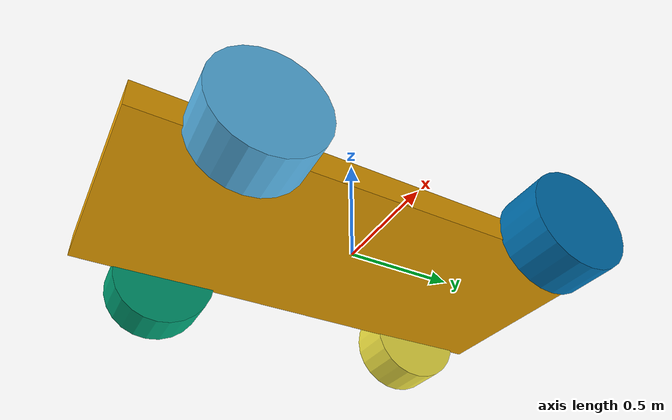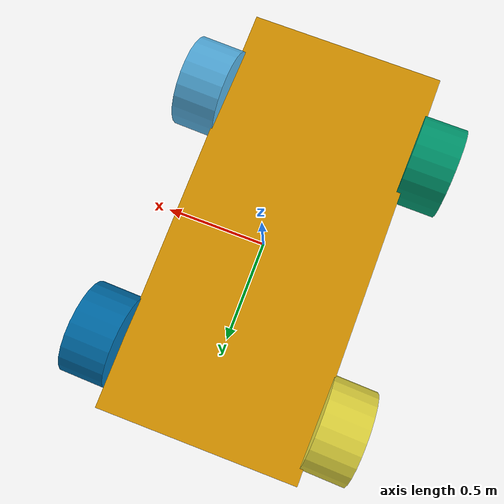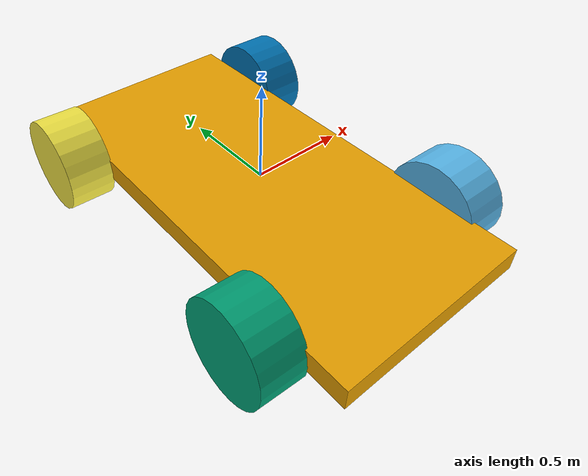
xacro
<?xml version="1.0" ?>
<robot name="bfl_1" xmlns:xacro="http://ros.org/wiki/xacro">

  <xacro:include filename="$(find dharmendra_model)/gazebo/bfl_1_material.gazebo" />
  <xacro:include filename="$(find dharmendra_model)/gazebo/bfl_1_physics.gazebo" />
  <xacro:include filename="$(find dharmendra_model)/gazebo/bfl_1_plugins.gazebo" />

  <joint name="bfl_1__link_0_JOINT_0" type="revolute">
    <parent link="bfl_1__link_0"/>
    <child link="bfl_1__link_1"/>
    <origin xyz="5.4971e-01 -6.7342e-01  4.4000e-04" rpy="-1.57019 -0.00661  1.54546"/>
    <axis xyz="0 0 1"/>
    <limit lower="-1.79769e+308" upper="1.79769e+308" effort="-1.0" velocity="-1.0"/>
  </joint>
  <joint name="bfl_1__link_0_JOINT_1" type="revolute">
    <parent link="bfl_1__link_0"/>
    <child link="bfl_1__link_1_clone"/>
    <origin xyz="-0.6462  -0.6747  -0.01576" rpy="1.62046 -0.00611  1.53547"/>
    <axis xyz="0 0 1"/>
    <limit lower="-1.79769e+308" upper="1.79769e+308" effort="-1.0" velocity="-1.0"/>
  </joint>
  <joint name="bfl_1__link_0_JOINT_2" type="revolute">
    <parent link="bfl_1__link_0"/>
    <child link="bfl_1__link_1_clone_0"/>
    <origin xyz="-6.4719e-01  7.0877e-01  4.4000e-04" rpy="1.5803  -0.00661  1.54546"/>
    <axis xyz="0 0 1"/>
    <limit lower="-1.79769e+308" upper="1.79769e+308" effort="-1.0" velocity="-1.0"/>
  </joint>
  <joint name="bfl_1__link_0_JOINT_3" type="revolute">
    <parent link="bfl_1__link_0"/>
    <child link="bfl_1__link_1_clone_1"/>
    <origin xyz="5.6365e-01 6.8420e-01 4.4000e-04" rpy="-1.57019 -0.00661  1.54546"/>
    <axis xyz="0 0 1"/>
    <limit lower="-1.79769e+308" upper="1.79769e+308" effort="-1.0" velocity="-1.0"/>
  </joint>
  <link name="bfl_1__link_0">
    <inertial>
      <mass value="0.234905"/>
      <origin xyz="0 0 0" rpy="0 0 0"/>
      <inertia ixx="0.086962" ixy="0" ixz="0" iyy="0.0198193" iyz="0" izz="0.106294"/>
    </inertial>
    <collision name="bfl_1__collision">
      <origin xyz="-0.04757 -0.04486  0.01443" rpy="0 0 0"/>
      <geometry>
        <box size="1 2.10474 0.111615"/>
      </geometry>
    </collision>
    <visual name="bfl_1__visual">
      <origin xyz="-0.04757 -0.04486  0.01443" rpy="0 0 0"/>
      <geometry>
        <box size="1 2.10474 0.111615"/>
      </geometry>
    </visual>
  </link>
  <link name="bfl_1__link_1">
    <inertial>
      <mass value="0.0479168"/>
      <origin xyz="0 0 0" rpy="0 0 0"/>
      <inertia ixx="0.000844516" ixy="0" ixz="0" iyy="0.000844516" iyz="0" izz="0.00129966"/>
    </inertial>
    <collision name="bfl_1__collision">
      <origin xyz="0 0 0" rpy="0 0 0"/>
      <geometry>
        <cylinder radius="0.232909" length="0.220806"/>
      </geometry>
    </collision>
    <visual name="bfl_1__visual">
      <origin xyz="0 0 0" rpy="0 0 0"/>
      <geometry>
        <cylinder radius="0.232909" length="0.220806"/>
      </geometry>
    </visual>
  </link>
  <link name="bfl_1__link_1_clone">
    <inertial>
      <mass value="0.0479168"/>
      <origin xyz="0 0 0" rpy="0 0 0"/>
      <inertia ixx="0.000844516" ixy="0" ixz="0" iyy="0.000844516" iyz="0" izz="0.00129966"/>
    </inertial>
    <collision name="bfl_1__collision">
      <origin xyz="0 0 0" rpy="0   0.01 0"/>
      <geometry>
        <cylinder radius="0.232909" length="0.220806"/>
      </geometry>
    </collision>
    <visual name="bfl_1__visual">
      <origin xyz="0 0 0" rpy="0   0.01 0"/>
      <geometry>
        <cylinder radius="0.232909" length="0.220806"/>
      </geometry>
    </visual>
  </link>
  <link name="bfl_1__link_1_clone_0">
    <inertial>
      <mass value="0.0479168"/>
      <origin xyz="0 0 0" rpy="0 0 0"/>
      <inertia ixx="0.000844516" ixy="0" ixz="0" iyy="0.000844516" iyz="0" izz="0.00129966"/>
    </inertial>
    <collision name="bfl_1__collision">
      <origin xyz="0 0 0" rpy="0 0 0"/>
      <geometry>
        <cylinder radius="0.232909" length="0.220806"/>
      </geometry>
    </collision>
    <visual name="bfl_1__visual">
      <origin xyz="0 0 0" rpy="0 0 0"/>
      <geometry>
        <cylinder radius="0.232909" length="0.220806"/>
      </geometry>
    </visual>
  </link>
  <link name="bfl_1__link_1_clone_1">
    <inertial>
      <mass value="0.0479168"/>
      <origin xyz="0 0 0" rpy="0 0 0"/>
      <inertia ixx="0.000844516" ixy="0" ixz="0" iyy="0.000844516" iyz="0" izz="0.00129966"/>
    </inertial>
    <collision name="bfl_1__collision">
      <origin xyz="0 0 0" rpy="0 0 0"/>
      <geometry>
        <cylinder radius="0.232909" length="0.220806"/>
      </geometry>
    </collision>
    <visual name="bfl_1__visual">
      <origin xyz="0 0 0" rpy="0 0 0"/>
      <geometry>
        <cylinder radius="0.232909" length="0.220806"/>
      </geometry>
    </visual>
  </link>

</robot>

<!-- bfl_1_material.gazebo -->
<robot name="bfl_1" xmlns:xacro="http://ros.org/wiki/xacro">
  <xacro:property name="body_color" value="Gazebo/Red"/>
  <xacro:property name="body_color1" value="Gazebo/Blue"/>

   <!-- chassy -->
  <gazebo reference="link_0">
    <material>${body_color}</material>
  </gazebo>

  <!-- front_left_wheel -->
  <gazebo reference="link_1">
    <material>${body_color1}</material>
  </gazebo>

  <!-- front_right_wheel -->
  <gazebo reference="link_1_clone">
    <material>${body_color1}</material>
  </gazebo>

  <!-- back_right_wheel -->
  <gazebo reference="link_1_clone_0">
    <material>${body_color1}</material>
  </gazebo>

   <!-- back_left_wheel -->
  <gazebo reference="link_1_clone_1">
    <material>${body_color1}</material>
  </gazebo>
</robot>
